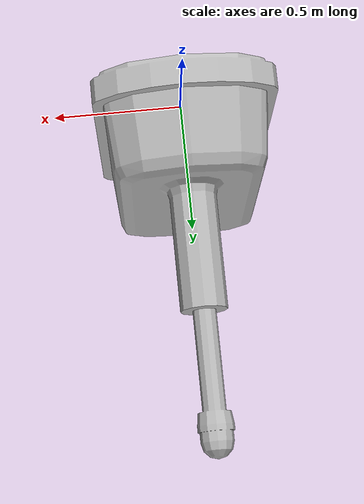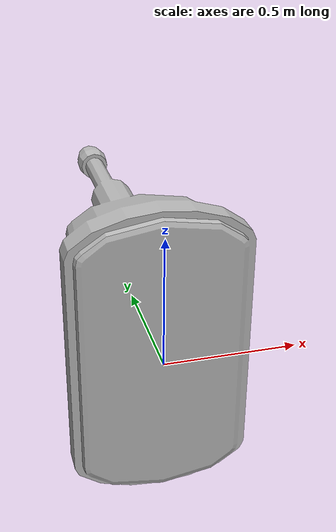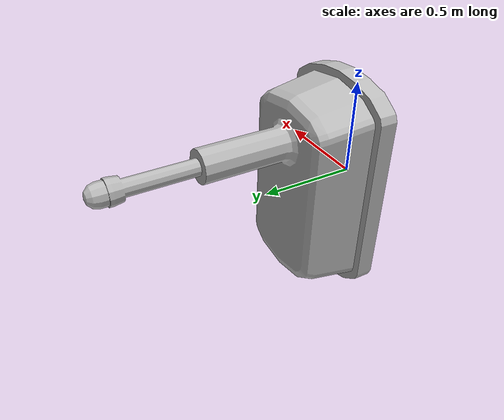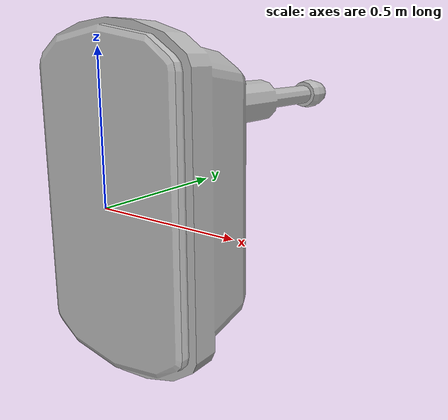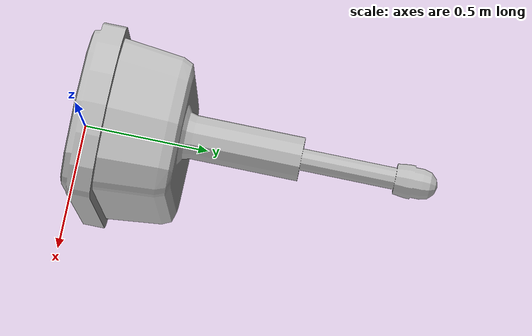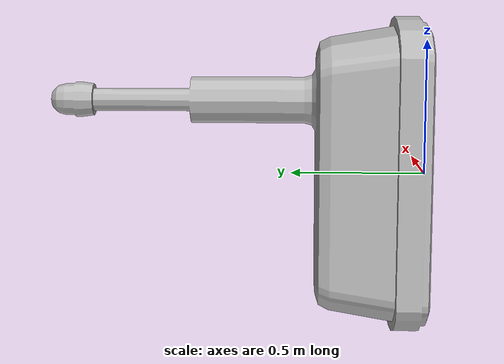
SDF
<?xml version="1.0" ?>
<sdf version="1.6">
  <model name="warehouse_robot">
    <static>true</static>
    <link name="link">
      <visual name="visual">
        <geometry>
          <mesh>
            <uri>model://pcg_warehouse_robot/meshes/robot.obj</uri>
          </mesh>
        </geometry>
      </visual>
      <collision name="collision_base">
        <pose>0 0 0.20437 0 0 0</pose>
        <geometry>
          <box>
            <size>0.55508 1.0228 0.40874</size>
          </box>
        </geometry>
      </collision>
      <collision name="collision_bumper">
        <pose>0 0 0.062205 0 0 0</pose>
        <geometry>
          <box>
            <size>0.67266 1.17126 0.12441</size>
          </box>
        </geometry>
      </collision>
      <collision name="collision_column_large">
        <pose>0 -0.27539 0.43738 0 0 0</pose>
        <geometry>
          <cylinder>
            <radius>0.08652</radius>
            <length>0.87476</length>
          </cylinder>
        </geometry>
      </collision>
      <collision name="collision_column_small">
        <pose>0 -0.27539 0.70424 0 0 0</pose>
        <geometry>
          <cylinder>
            <radius>0.04261</radius>
            <length>1.40848</length>
          </cylinder>
        </geometry>
      </collision>
    </link>
  </model>
</sdf>
